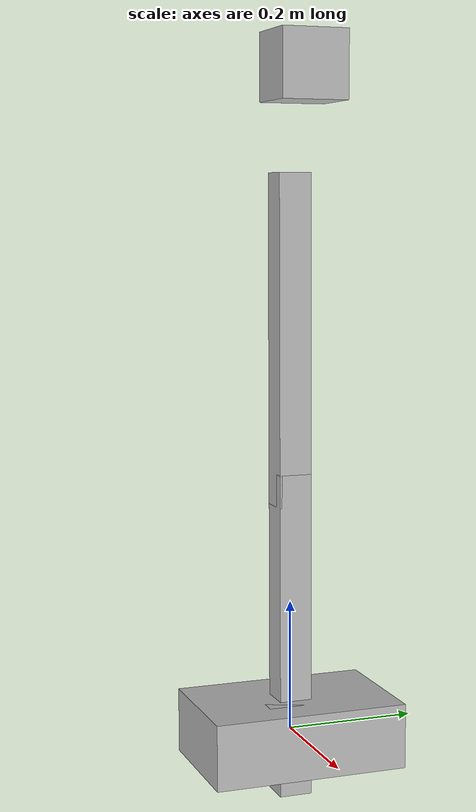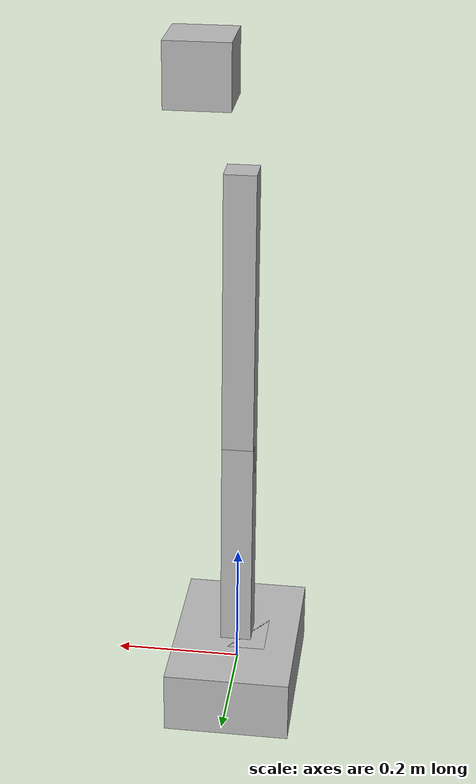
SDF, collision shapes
<sdf version='1.7'>
  <model name='origins'>
    <link name='base_link'>
      <inertial>
        <pose>0 0 0 0 -0 0</pose>
        <mass>140</mass>
        <inertia>
          <ixx>5</ixx>
          <ixy>0</ixy>
          <ixz>0</ixz>
          <iyy>5</iyy>
          <iyz>0</iyz>
          <izz>5</izz>
        </inertia>
      </inertial>
      <collision name='base_link_collision'>
        <pose>0 0 0 0 -0 0</pose>
        <geometry>
          <box>
            <size>0.2 0.3 0.1</size>
          </box>
        </geometry>
      </collision>
      <collision name='base_link_fixed_joint_lump__wheel_1_collision_1'>
        <pose>0 0 0 0 -0 0</pose>
        <geometry>
          <cylinder>
            <length>0.05</length>
            <radius>0.05</radius>
          </cylinder>
        </geometry>
      </collision>
      <collision name='base_link_fixed_joint_lump__wheel_2_collision_2'>
        <pose>0 0 0 0 -0 0</pose>
        <geometry>
          <cylinder>
            <length>0.05</length>
            <radius>0.05</radius>
          </cylinder>
        </geometry>
      </collision>
      <collision name='base_link_fixed_joint_lump__wheel_3_collision_3'>
        <pose>0 0 0 0 -0 0</pose>
        <geometry>
          <cylinder>
            <length>0.05</length>
            <radius>0.05</radius>
          </cylinder>
        </geometry>
      </collision>
      <collision name='base_link_fixed_joint_lump__wheel_4_collision_4'>
        <pose>0 0 0 0 -0 0</pose>
        <geometry>
          <cylinder>
            <length>0.05</length>
            <radius>0.05</radius>
          </cylinder>
        </geometry>
      </collision>
      <visual name='base_link_visual'>
        <pose>0 0 0.05 0 -0 0</pose>
        <geometry>
          <box>
            <size>0.2 0.3 0.1</size>
          </box>
        </geometry>
      </visual>
      <visual name='base_link_fixed_joint_lump__wheel_1_visual_1'>
        <pose>0.1 0.1 0 0 1.5 0</pose>
        <geometry>
          <cylinder>
            <length>0.05</length>
            <radius>0.05</radius>
          </cylinder>
        </geometry>
      </visual>
      <visual name='base_link_fixed_joint_lump__wheel_2_visual_2'>
        <pose>-0.1 0.1 0 0 1.5 0</pose>
        <geometry>
          <cylinder>
            <length>0.05</length>
            <radius>0.05</radius>
          </cylinder>
        </geometry>
      </visual>
      <visual name='base_link_fixed_joint_lump__wheel_3_visual_3'>
        <pose>0.1 -0.1 0 0 1.5 0</pose>
        <geometry>
          <cylinder>
            <length>0.05</length>
            <radius>0.05</radius>
          </cylinder>
        </geometry>
      </visual>
      <visual name='base_link_fixed_joint_lump__wheel_4_visual_4'>
        <pose>-0.1 -0.1 0 0 1.5 0</pose>
        <geometry>
          <cylinder>
            <length>0.05</length>
            <radius>0.05</radius>
          </cylinder>
        </geometry>
      </visual>
    </link>
    <joint name='base_to_arm_base' type='revolute'>
      <pose relative_to='base_link'>0 0 0 0 -0 0</pose>
      <parent>base_link</parent>
      <child>arm_base</child>
      <axis>
        <xyz>0 0 1</xyz>
        <limit>
          <lower>-1e+16</lower>
          <upper>1e+16</upper>
        </limit>
        <dynamics>
          <spring_reference>0</spring_reference>
          <spring_stiffness>0</spring_stiffness>
        </dynamics>
      </axis>
    </joint>
    <link name='arm_base'>
      <pose relative_to='base_to_arm_base'>0 0 0 0 -0 0</pose>
      <inertial>
        <pose>0 0 0 0 -0 0</pose>
        <mass>1</mass>
        <inertia>
          <ixx>1</ixx>
          <ixy>0</ixy>
          <ixz>0</ixz>
          <iyy>1</iyy>
          <iyz>0</iyz>
          <izz>1</izz>
        </inertia>
      </inertial>
      <collision name='arm_base_collision'>
        <pose>0 0 0 0 -0 0</pose>
        <geometry>
          <box>
            <size>0.1 0.1 0.1</size>
          </box>
        </geometry>
      </collision>
      <visual name='arm_base_visual'>
        <pose>0 0 0.1 0 -0 0</pose>
        <geometry>
          <box>
            <size>0.1 0.1 0.1</size>
          </box>
        </geometry>
      </visual>
    </link>
    <joint name='arm_1_to_arm_base' type='revolute'>
      <pose relative_to='arm_base'>0 0 0.15 0 -0 0</pose>
      <parent>arm_base</parent>
      <child>arm_1</child>
      <axis>
        <xyz>1 0 0</xyz>
        <limit>
          <lower>-1</lower>
          <upper>1</upper>
          <effort>1000</effort>
          <velocity>0.5</velocity>
        </limit>
        <dynamics>
          <spring_reference>0</spring_reference>
          <spring_stiffness>0</spring_stiffness>
        </dynamics>
      </axis>
    </joint>
    <link name='arm_1'>
      <pose relative_to='arm_1_to_arm_base'>0 0 0 0 -0 0</pose>
      <inertial>
        <pose>0 0 0 0 -0 0</pose>
        <mass>1</mass>
        <inertia>
          <ixx>1</ixx>
          <ixy>0</ixy>
          <ixz>0</ixz>
          <iyy>1</iyy>
          <iyz>0</iyz>
          <izz>1</izz>
        </inertia>
      </inertial>
      <collision name='arm_1_collision'>
        <pose>0 0 0 0 -0 0</pose>
        <geometry>
          <box>
            <size>0.05 0.05 0.5</size>
          </box>
        </geometry>
      </collision>
      <visual name='arm_1_visual'>
        <pose>0 0 0.25 0 -0 0</pose>
        <geometry>
          <box>
            <size>0.05 0.05 0.5</size>
          </box>
        </geometry>
      </visual>
    </link>
    <joint name='arm_2_to_arm_1' type='revolute'>
      <pose relative_to='arm_1'>0 0 0.45 0 -0 0</pose>
      <parent>arm_1</parent>
      <child>arm_2</child>
      <axis>
        <xyz>1 0 0</xyz>
        <limit>
          <lower>-2.5</lower>
          <upper>2.5</upper>
          <effort>1000</effort>
          <velocity>0.5</velocity>
        </limit>
        <dynamics>
          <spring_reference>0</spring_reference>
          <spring_stiffness>0</spring_stiffness>
        </dynamics>
      </axis>
    </joint>
    <link name='arm_2'>
      <pose relative_to='arm_2_to_arm_1'>0 0 0 0 -0 0</pose>
      <inertial>
        <pose>0 0 0 0 -0 0</pose>
        <mass>1</mass>
        <inertia>
          <ixx>1</ixx>
          <ixy>0</ixy>
          <ixz>0</ixz>
          <iyy>1</iyy>
          <iyz>0</iyz>
          <izz>1</izz>
        </inertia>
      </inertial>
      <collision name='arm_2_collision'>
        <pose>0 0 0 0 -0 0</pose>
        <geometry>
          <box>
            <size>0.05 0.05 0.5</size>
          </box>
        </geometry>
      </collision>
      <visual name='arm_2_visual'>
        <pose>0.06 0 0.15 0 -0 0</pose>
        <geometry>
          <box>
            <size>0.05 0.05 0.5</size>
          </box>
        </geometry>
      </visual>
    </link>
    <joint name='left_gripper_joint' type='revolute'>
      <pose relative_to='arm_2'>0.06 0 0.4 0 -1.57 0</pose>
      <parent>arm_2</parent>
      <child>left_gripper</child>
      <axis>
        <xyz>0 0 1</xyz>
        <limit>
          <lower>0</lower>
          <upper>0.548</upper>
          <effort>1000</effort>
          <velocity>0.5</velocity>
        </limit>
        <dynamics>
          <spring_reference>0</spring_reference>
          <spring_stiffness>0</spring_stiffness>
        </dynamics>
      </axis>
    </joint>
    <link name='left_gripper'>
      <pose relative_to='left_gripper_joint'>0 0 0 0 -0 0</pose>
      <inertial>
        <pose>0 0 0 0 -0 0</pose>
        <mass>2</mass>
        <inertia>
          <ixx>2</ixx>
          <ixy>0</ixy>
          <ixz>0</ixz>
          <iyy>2</iyy>
          <iyz>0</iyz>
          <izz>2</izz>
        </inertia>
      </inertial>
      <collision name='left_gripper_collision'>
        <pose>0 0 0 0 -0 0</pose>
        <geometry>
          <box>
            <size>0.1 0.1 0.1</size>
          </box>
        </geometry>
      </collision>
      <collision name='left_gripper_fixed_joint_lump__left_tip_collision_1'>
        <pose>0 0 0 0 -0 0</pose>
        <geometry>
          <box>
            <size>0.1 0.1 0.1</size>
          </box>
        </geometry>
      </collision>
      <visual name='left_gripper_visual'>
        <pose>0 0 0 0 -0 0</pose>
        <geometry>
          <mesh>
            <scale>1 1 1</scale>
            <uri>model://pr2/meshes/gripper_v0/l_finger.dae</uri>
          </mesh>
        </geometry>
      </visual>
      <visual name='left_gripper_fixed_joint_lump__left_tip_visual_1'>
        <pose>0.09137 0.00495 0 0 -0 0</pose>
        <geometry>
          <mesh>
            <scale>1 1 1</scale>
            <uri>model://pr2/meshes/gripper_v0/l_finger_tip.dae</uri>
          </mesh>
        </geometry>
      </visual>
    </link>
    <joint name='right_gripper_joint' type='revolute'>
      <pose relative_to='arm_2'>0.06 0 0.4 0 -1.57 0</pose>
      <parent>arm_2</parent>
      <child>right_gripper</child>
      <axis>
        <xyz>0 0 -1</xyz>
        <limit>
          <lower>0</lower>
          <upper>0.548</upper>
          <effort>1000</effort>
          <velocity>0.5</velocity>
        </limit>
        <dynamics>
          <spring_reference>0</spring_reference>
          <spring_stiffness>0</spring_stiffness>
        </dynamics>
      </axis>
    </joint>
    <link name='right_gripper'>
      <pose relative_to='right_gripper_joint'>0 0 0 0 -0 0</pose>
      <inertial>
        <pose>0 0 0 0 -0 0</pose>
        <mass>2</mass>
        <inertia>
          <ixx>2</ixx>
          <ixy>0</ixy>
          <ixz>0</ixz>
          <iyy>2</iyy>
          <iyz>0</iyz>
          <izz>2</izz>
        </inertia>
      </inertial>
      <collision name='right_gripper_collision'>
        <pose>0 0 0 0 -0 0</pose>
        <geometry>
          <box>
            <size>0.1 0.1 0.1</size>
          </box>
        </geometry>
      </collision>
      <collision name='right_gripper_fixed_joint_lump__right_tip_collision_1'>
        <pose>0 0 0 0 -0 0</pose>
        <geometry>
          <box>
            <size>0.1 0.1 0.1</size>
          </box>
        </geometry>
      </collision>
      <visual name='right_gripper_visual'>
        <pose>0 0 0 -3.1415 0 0</pose>
        <geometry>
          <mesh>
            <scale>1 1 1</scale>
            <uri>model://pr2/meshes/gripper_v0/l_finger.dae</uri>
          </mesh>
        </geometry>
      </visual>
      <visual name='right_gripper_fixed_joint_lump__right_tip_visual_1'>
        <pose>0.09137 0.00495 0 -3.1415 0 0</pose>
        <geometry>
          <mesh>
            <scale>1 1 1</scale>
            <uri>model://pr2/meshes/gripper_v0/l_finger_tip.dae</uri>
          </mesh>
        </geometry>
      </visual>
    </link>
  </model>
</sdf>
